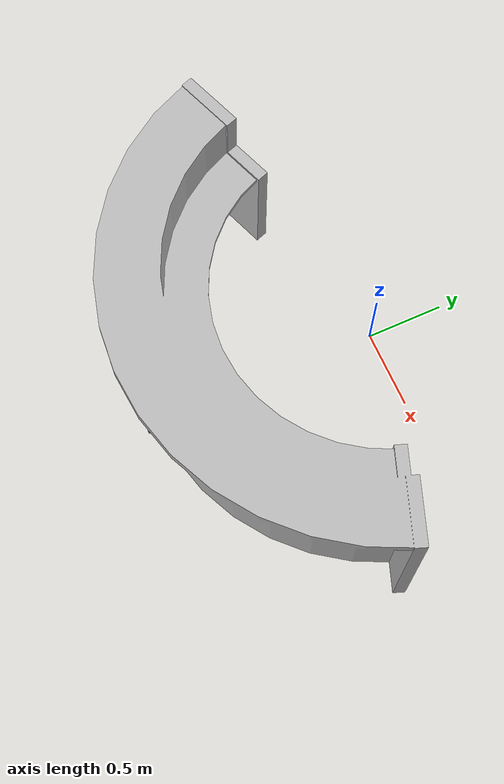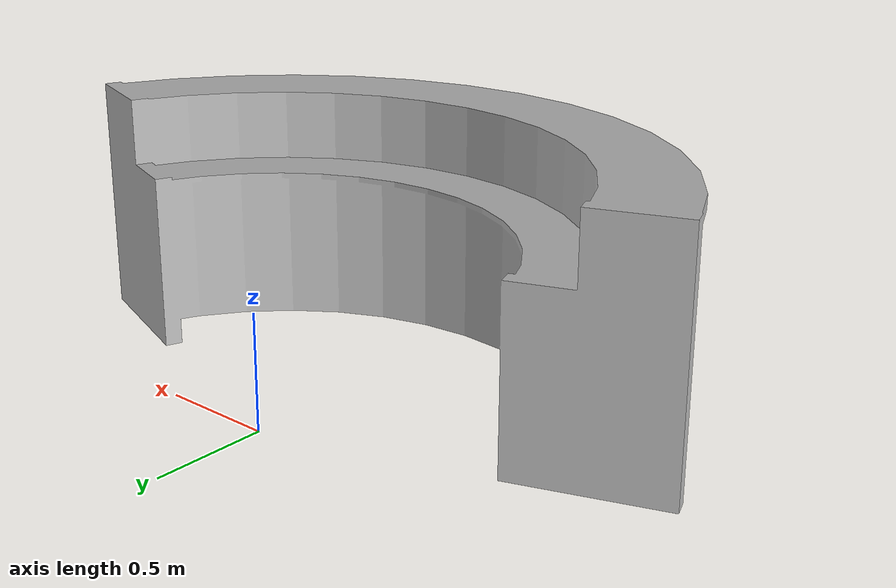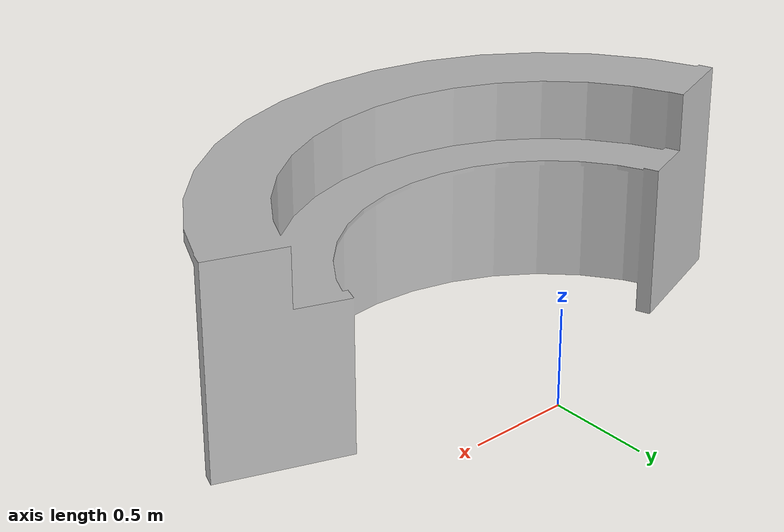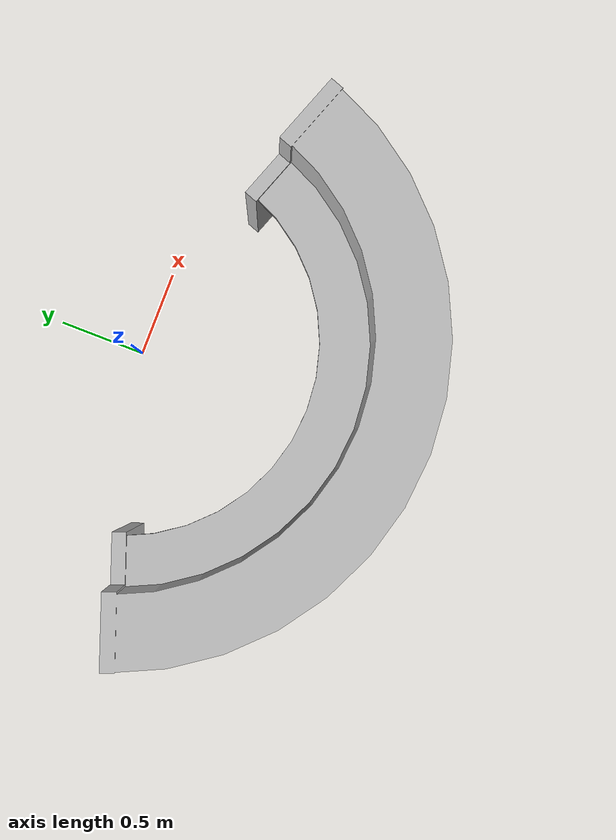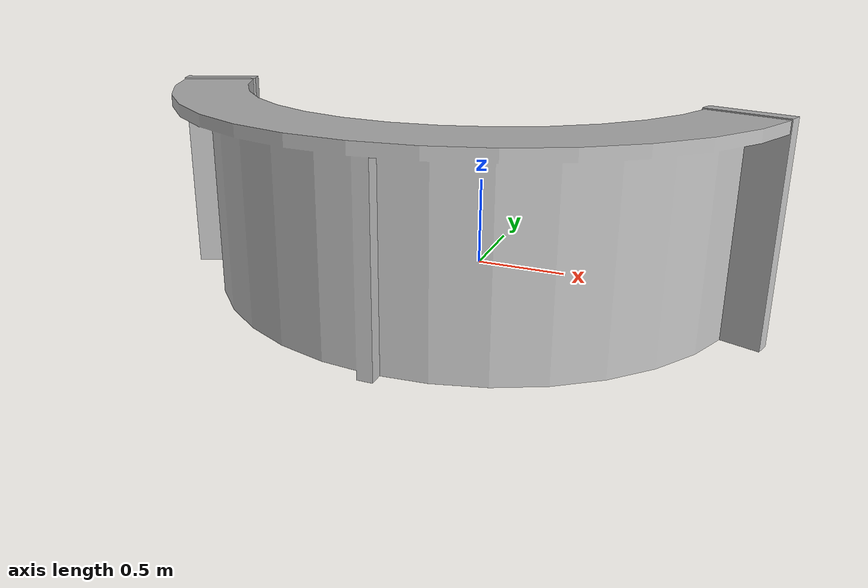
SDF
<sdf version="1.5">
  <model name="reception_desk">
    <static>true</static>
    <link name="link">
      <collision name="collision">
        <geometry>
          <mesh>
            <uri>model://reception_desk/meshes/reception_desk.obj</uri>
            <scale>0.01 0.01 0.01</scale>
          </mesh>
        </geometry>
      </collision>
      <visual name="visual">
        <geometry>
          <mesh>
            <uri>model://reception_desk/meshes/reception_desk.obj</uri>
            <scale>0.01 0.01 0.01</scale>
          </mesh>
        </geometry>
      </visual>
    </link>
  </model>
</sdf>
